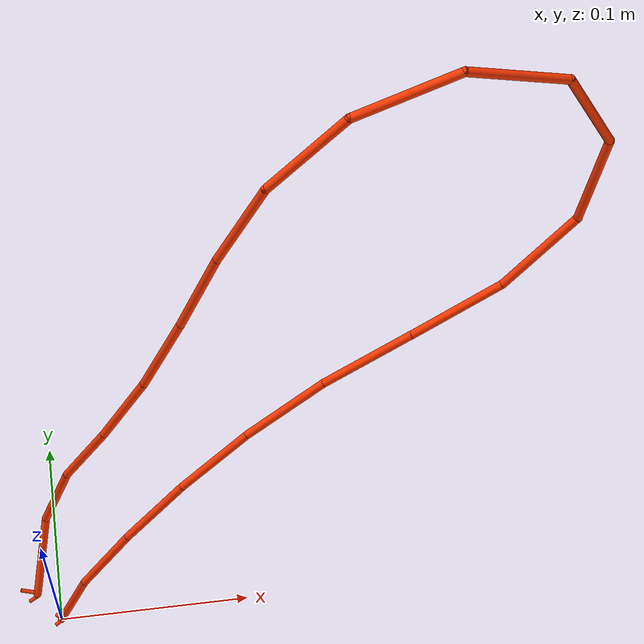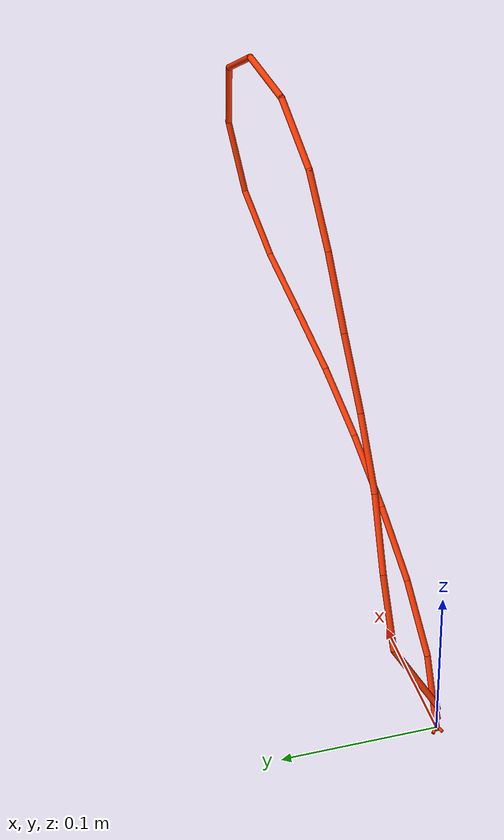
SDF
<?xml version="1.0" ?>
<sdf version="1.9">
  <model name="cable">
    <link name='cable_end_0'>
      <pose>0 0 0 0 0 0</pose>
      <inertial>
        <pose>0 0 0 0 0 0</pose>
        <mass>0</mass>
        <inertia>
          <ixx>0.001</ixx>
          <ixy>0</ixy>
          <ixz>0</ixz>
          <iyy>0.001</iyy>
          <iyz>0</iyz>
          <izz>0.001</izz>
        </inertia>
      </inertial>
      <collision name='base_collision'>
        <pose>0 0 0 0 0 0</pose>
        <geometry>
          <sphere>
            <radius>0.002</radius>
          </sphere>
        </geometry>
        <surface>
          <friction>
            <torsional>
              <coefficient>0.05</coefficient>
            </torsional>
            <bullet>
              <friction>0.05</friction>
              <friction2>0.05</friction2>
            </bullet>
          </friction>
        </surface>
      </collision>
      <visual name='base_vis'>
        <pose>0 0 0 0 0 0</pose>
        <geometry>
          <sphere>
            <radius>0.002</radius>
          </sphere>
        </geometry>
        <material>
          <diffuse>1 0.219999999 0 1</diffuse>
          <specular>0.5 0.5 0.5 1</specular>
          <pbr>
            <metal>
              <roughness>0.01</roughness>
              <metalness>0.01</metalness>
            </metal>
          </pbr>
        </material>
      </visual>
      <enable_wind>false</enable_wind>
    </link>
    <joint name='joint_end_0' type='ball'>
      <pose>-1.2196199999999999e-18 1.7036e-19 -0.024 0.024762999999999993 1.7999999999999909e-05 -0.061838999999999998</pose>
      <child>link_1</child>
      <parent>cable_end_0</parent>
      <axis>
        <xyz>1.7146062837236352e-16 -1.5504091066549018e-17 1</xyz>
        <limit>
          <lower>-inf</lower>
          <upper>inf</upper>
          <effort>inf</effort>
          <velocity>inf</velocity>
          <stiffness>100000000</stiffness>
          <dissipation>1</dissipation>
        </limit>
        <dynamics>
          <spring_reference>0</spring_reference>
          <spring_stiffness>0</spring_stiffness>
          <damping>0.20000000000000001</damping>
          <friction>0</friction>
        </dynamics>
      </axis>
    </joint>
    <link name='link_1'>
      <pose>0.008285270026755942 0.00090974360136397703 0.022503620592118634 0.030248501434986374 0.35347438069324083 0.1965656925848957</pose>
      <inertial>
        <pose>0 0 0 0 0 0</pose>
        <mass>0</mass>
        <inertia>
          <ixx>0.001</ixx>
          <ixy>0</ixy>
          <ixz>0</ixz>
          <iyy>0.001</iyy>
          <iyz>0</iyz>
          <izz>0.001</izz>
        </inertia>
      </inertial>
      <collision name='link_1_collision'>
        <pose>0 0 0.0060000000000000001 0 0 0</pose>
        <geometry>
          <capsule>
            <length>0.035999999999999997</length>
            <radius>0.002</radius>
          </capsule>
        </geometry>
        <surface>
          <friction>
            <torsional>
              <coefficient>0.050000000000000003</coefficient>
            </torsional>
            <bullet>
              <friction>0.050000000000000003</friction>
              <friction2>0.050000000000000003</friction2>
            </bullet>
          </friction>
        </surface>
      </collision>
      <visual name='link_1_vis'>
        <pose>0 0 0 0 0 0</pose>
        <geometry>
          <capsule>
            <length>0.048000000000000001</length>
            <radius>0.002</radius>
          </capsule>
        </geometry>
        <material>
          <diffuse>1 0.219999999 0 1</diffuse>
          <specular>0.5 0.5 0.5 1</specular>
          <pbr>
            <metal>
              <roughness>0.01</roughness>
              <metalness>0.01</metalness>
            </metal>
          </pbr>
        </material>
      </visual>
      <enable_wind>false</enable_wind>
    </link>
    <link name='link_2'>
      <pose>0.02939153165201347 0.0046136601655235032 0.065097538877921246 0.16626173834772792 0.55672948194858762 0.52205207666730291</pose>
      <inertial>
        <pose>0 0 0 0 0 0</pose>
        <mass>0</mass>
        <inertia>
          <ixx>0.001</ixx>
          <ixy>0</ixy>
          <ixz>0</ixz>
          <iyy>0.001</iyy>
          <iyz>0</iyz>
          <izz>0.001</izz>
        </inertia>
      </inertial>
      <collision name='link_2_collision'>
        <pose>0 0 0 0 0 0</pose>
        <geometry>
          <capsule>
            <length>0.048000000000000001</length>
            <radius>0.002</radius>
          </capsule>
        </geometry>
        <surface>
          <friction>
            <torsional>
              <coefficient>0.050000000000000003</coefficient>
            </torsional>
            <bullet>
              <friction>0.050000000000000003</friction>
              <friction2>0.050000000000000003</friction2>
            </bullet>
          </friction>
        </surface>
      </collision>
      <visual name='link_2_vis'>
        <pose>0 0 0 0 0 0</pose>
        <geometry>
          <capsule>
            <length>0.048000000000000001</length>
            <radius>0.002</radius>
          </capsule>
        </geometry>
        <material>
          <diffuse>1 0.219999999 0 1</diffuse>
          <specular>0.5 0.5 0.5 1</specular>
          <pbr>
            <metal>
              <roughness>0.01</roughness>
              <metalness>0.01</metalness>
            </metal>
          </pbr>
        </material>
      </visual>
      <enable_wind>false</enable_wind>
    </link>
    <link name='link_3'>
      <pose>0.057153364056589773 0.011170405104272418 0.10357949385143034 0.41880122695709227 0.57530736391681037 0.93249384066024532</pose>
      <inertial>
        <pose>0 0 0 0 0 0</pose>
        <mass>0</mass>
        <inertia>
          <ixx>0.001</ixx>
          <ixy>0</ixy>
          <ixz>0</ixz>
          <iyy>0.001</iyy>
          <iyz>0</iyz>
          <izz>0.001</izz>
        </inertia>
      </inertial>
      <collision name='link_3_collision'>
        <pose>0 0 0 0 0 0</pose>
        <geometry>
          <capsule>
            <length>0.048000000000000001</length>
            <radius>0.002</radius>
          </capsule>
        </geometry>
        <surface>
          <friction>
            <torsional>
              <coefficient>0.050000000000000003</coefficient>
            </torsional>
            <bullet>
              <friction>0.050000000000000003</friction>
              <friction2>0.050000000000000003</friction2>
            </bullet>
          </friction>
        </surface>
      </collision>
      <visual name='link_3_vis'>
        <pose>0 0 0 0 0 0</pose>
        <geometry>
          <capsule>
            <length>0.048000000000000001</length>
            <radius>0.002</radius>
          </capsule>
        </geometry>
        <material>
          <diffuse>1 0.219999999 0 1</diffuse>
          <specular>0.5 0.5 0.5 1</specular>
          <pbr>
            <metal>
              <roughness>0.01</roughness>
              <metalness>0.01</metalness>
            </metal>
          </pbr>
        </material>
      </visual>
      <enable_wind>false</enable_wind>
    </link>
    <link name='link_4'>
      <pose>0.088682073728616695 0.018895727692867126 0.13883689620313056 0.69551666984829164 0.41270548696486697 1.357330522349333</pose>
      <inertial>
        <pose>0 0 0 0 0 0</pose>
        <mass>0</mass>
        <inertia>
          <ixx>0.001</ixx>
          <ixy>0</ixy>
          <ixz>0</ixz>
          <iyy>0.001</iyy>
          <iyz>0</iyz>
          <izz>0.001</izz>
        </inertia>
      </inertial>
      <collision name='link_4_collision'>
        <pose>0 0 0 0 0 0</pose>
        <geometry>
          <capsule>
            <length>0.048000000000000001</length>
            <radius>0.002</radius>
          </capsule>
        </geometry>
        <surface>
          <friction>
            <torsional>
              <coefficient>0.050000000000000003</coefficient>
            </torsional>
            <bullet>
              <friction>0.050000000000000003</friction>
              <friction2>0.050000000000000003</friction2>
            </bullet>
          </friction>
        </surface>
      </collision>
      <visual name='link_4_vis'>
        <pose>0 0 0 0 0 0</pose>
        <geometry>
          <capsule>
            <length>0.048000000000000001</length>
            <radius>0.002</radius>
          </capsule>
        </geometry>
        <material>
          <diffuse>1 0.219999999 0 1</diffuse>
          <specular>0.5 0.5 0.5 1</specular>
          <pbr>
            <metal>
              <roughness>0.01</roughness>
              <metalness>0.01</metalness>
            </metal>
          </pbr>
        </material>
      </visual>
      <enable_wind>false</enable_wind>
    </link>
    <link name='link_5'>
      <pose>0.12376637580592709 0.0268874747987361 0.17040941000011572 0.90844140104159921 0.068528156329668355 1.7320902866495604</pose>
      <inertial>
        <pose>0 0 0 0 0 0</pose>
        <mass>0</mass>
        <inertia>
          <ixx>0.001</ixx>
          <ixy>0</ixy>
          <ixz>0</ixz>
          <iyy>0.001</iyy>
          <iyz>0</iyz>
          <izz>0.001</izz>
        </inertia>
      </inertial>
      <collision name='link_5_collision'>
        <pose>0 0 0 0 0 0</pose>
        <geometry>
          <capsule>
            <length>0.048000000000000001</length>
            <radius>0.002</radius>
          </capsule>
        </geometry>
        <surface>
          <friction>
            <torsional>
              <coefficient>0.050000000000000003</coefficient>
            </torsional>
            <bullet>
              <friction>0.050000000000000003</friction>
              <friction2>0.050000000000000003</friction2>
            </bullet>
          </friction>
        </surface>
      </collision>
      <visual name='link_5_vis'>
        <pose>0 0 0 0 0 0</pose>
        <geometry>
          <capsule>
            <length>0.048000000000000001</length>
            <radius>0.002</radius>
          </capsule>
        </geometry>
        <material>
          <diffuse>1 0.219999999 0 1</diffuse>
          <specular>0.5 0.5 0.5 1</specular>
          <pbr>
            <metal>
              <roughness>0.01</roughness>
              <metalness>0.01</metalness>
            </metal>
          </pbr>
        </material>
      </visual>
      <enable_wind>false</enable_wind>
    </link>
    <link name='link_6'>
      <pose>0.16267066677155051 0.034711321421656727 0.19703317873456117 0.9810885291290079 -0.45930277985347973 2.0435337976852814</pose>
      <inertial>
        <pose>0 0 0 0 0 0</pose>
        <mass>0</mass>
        <inertia>
          <ixx>0.001</ixx>
          <ixy>0</ixy>
          <ixz>0</ixz>
          <iyy>0.001</iyy>
          <iyz>0</iyz>
          <izz>0.001</izz>
        </inertia>
      </inertial>
      <collision name='link_6_collision'>
        <pose>0 0 0 0 0 0</pose>
        <geometry>
          <capsule>
            <length>0.048000000000000001</length>
            <radius>0.002</radius>
          </capsule>
        </geometry>
        <surface>
          <friction>
            <torsional>
              <coefficient>0.050000000000000003</coefficient>
            </torsional>
            <bullet>
              <friction>0.050000000000000003</friction>
              <friction2>0.050000000000000003</friction2>
            </bullet>
          </friction>
        </surface>
      </collision>
      <visual name='link_6_vis'>
        <pose>0 0 0 0 0 0</pose>
        <geometry>
          <capsule>
            <length>0.048000000000000001</length>
            <radius>0.002</radius>
          </capsule>
        </geometry>
        <material>
          <diffuse>1 0.219999999 0 1</diffuse>
          <specular>0.5 0.5 0.5 1</specular>
          <pbr>
            <metal>
              <roughness>0.01</roughness>
              <metalness>0.01</metalness>
            </metal>
          </pbr>
        </material>
      </visual>
      <enable_wind>false</enable_wind>
    </link>
    <link name='link_7'>
      <pose>0.20337583372476709 0.042444463772830926 0.22085857069715703 0.56285688430793523 -0.93871818398439266 2.6705906514245008</pose>
      <inertial>
        <pose>0 0 0 0 0 0</pose>
        <mass>0</mass>
        <inertia>
          <ixx>0.001</ixx>
          <ixy>0</ixy>
          <ixz>0</ixz>
          <iyy>0.001</iyy>
          <iyz>0</iyz>
          <izz>0.001</izz>
        </inertia>
      </inertial>
      <collision name='link_7_collision'>
        <pose>0 0 0 0 0 0</pose>
        <geometry>
          <capsule>
            <length>0.048000000000000001</length>
            <radius>0.002</radius>
          </capsule>
        </geometry>
        <surface>
          <friction>
            <torsional>
              <coefficient>0.050000000000000003</coefficient>
            </torsional>
            <bullet>
              <friction>0.050000000000000003</friction>
              <friction2>0.050000000000000003</friction2>
            </bullet>
          </friction>
        </surface>
      </collision>
      <visual name='link_7_vis'>
        <pose>0 0 0 0 0 0</pose>
        <geometry>
          <capsule>
            <length>0.048000000000000001</length>
            <radius>0.002</radius>
          </capsule>
        </geometry>
        <material>
          <diffuse>1 0.219999999 0 1</diffuse>
          <specular>0.5 0.5 0.5 1</specular>
          <pbr>
            <metal>
              <roughness>0.01</roughness>
              <metalness>0.01</metalness>
            </metal>
          </pbr>
        </material>
      </visual>
      <enable_wind>false</enable_wind>
    </link>
    <link name='link_8'>
      <pose>0.2391505570920418 0.050955764702356354 0.25027272603107581 -0.14299910833305185 -0.73388919942900077 -2.6419102283279545</pose>
      <inertial>
        <pose>0 0 0 0 0 0</pose>
        <mass>0</mass>
        <inertia>
          <ixx>0.001</ixx>
          <ixy>0</ixy>
          <ixz>0</ixz>
          <iyy>0.001</iyy>
          <iyz>0</iyz>
          <izz>0.001</izz>
        </inertia>
      </inertial>
      <collision name='link_8_collision'>
        <pose>0 0 0 0 0 0</pose>
        <geometry>
          <capsule>
            <length>0.048000000000000001</length>
            <radius>0.002</radius>
          </capsule>
        </geometry>
        <surface>
          <friction>
            <torsional>
              <coefficient>0.050000000000000003</coefficient>
            </torsional>
            <bullet>
              <friction>0.050000000000000003</friction>
              <friction2>0.050000000000000003</friction2>
            </bullet>
          </friction>
        </surface>
      </collision>
      <visual name='link_8_vis'>
        <pose>0 0 0 0 0 0</pose>
        <geometry>
          <capsule>
            <length>0.048000000000000001</length>
            <radius>0.002</radius>
          </capsule>
        </geometry>
        <material>
          <diffuse>1 0.219999999 0 1</diffuse>
          <specular>0.5 0.5 0.5 1</specular>
          <pbr>
            <metal>
              <roughness>0.01</roughness>
              <metalness>0.01</metalness>
            </metal>
          </pbr>
        </material>
      </visual>
      <enable_wind>false</enable_wind>
    </link>
    <link name='link_9'>
      <pose>0.258946865599464 0.059422163011106255 0.29091205419886285 -0.041231458002225448 -0.24352775279681368 -2.2395016234709875</pose>
      <inertial>
        <pose>0 0 0 0 0 0</pose>
        <mass>0</mass>
        <inertia>
          <ixx>0.001</ixx>
          <ixy>0</ixy>
          <ixz>0</ixz>
          <iyy>0.001</iyy>
          <iyz>0</iyz>
          <izz>0.001</izz>
        </inertia>
      </inertial>
      <collision name='link_9_collision'>
        <pose>0 0 0 0 0 0</pose>
        <geometry>
          <capsule>
            <length>0.048000000000000001</length>
            <radius>0.002</radius>
          </capsule>
        </geometry>
        <surface>
          <friction>
            <torsional>
              <coefficient>0.050000000000000003</coefficient>
            </torsional>
            <bullet>
              <friction>0.050000000000000003</friction>
              <friction2>0.050000000000000003</friction2>
            </bullet>
          </friction>
        </surface>
      </collision>
      <visual name='link_9_vis'>
        <pose>0 0 0 0 0 0</pose>
        <geometry>
          <capsule>
            <length>0.048000000000000001</length>
            <radius>0.002</radius>
          </capsule>
        </geometry>
        <material>
          <diffuse>1 0.219999999 0 1</diffuse>
          <specular>0.5 0.5 0.5 1</specular>
          <pbr>
            <metal>
              <roughness>0.01</roughness>
              <metalness>0.01</metalness>
            </metal>
          </pbr>
        </material>
      </visual>
      <enable_wind>false</enable_wind>
    </link>
    <link name='link_10'>
      <pose>0.25242815879395297 0.064725654869659588 0.33529862724789683 0.46436385581535794 0.1005083466642729 -1.8983941769762329</pose>
      <inertial>
        <pose>0 0 0 0 0 0</pose>
        <mass>0</mass>
        <inertia>
          <ixx>0.001</ixx>
          <ixy>0</ixy>
          <ixz>0</ixz>
          <iyy>0.001</iyy>
          <iyz>0</iyz>
          <izz>0.001</izz>
        </inertia>
      </inertial>
      <collision name='link_10_collision'>
        <pose>0 0 0 0 0 0</pose>
        <geometry>
          <capsule>
            <length>0.048000000000000001</length>
            <radius>0.002</radius>
          </capsule>
        </geometry>
        <surface>
          <friction>
            <torsional>
              <coefficient>0.050000000000000003</coefficient>
            </torsional>
            <bullet>
              <friction>0.050000000000000003</friction>
              <friction2>0.050000000000000003</friction2>
            </bullet>
          </friction>
        </surface>
      </collision>
      <visual name='link_10_vis'>
        <pose>0 0 0 0 0 0</pose>
        <geometry>
          <capsule>
            <length>0.048000000000000001</length>
            <radius>0.002</radius>
          </capsule>
        </geometry>
        <material>
          <diffuse>1 0.219999999 0 1</diffuse>
          <specular>0.5 0.5 0.5 1</specular>
          <pbr>
            <metal>
              <roughness>0.01</roughness>
              <metalness>0.01</metalness>
            </metal>
          </pbr>
        </material>
      </visual>
      <enable_wind>false</enable_wind>
    </link>
    <link name='link_11'>
      <pose>0.21949373442461328 0.064158915944090511 0.36545801957052509 1.1835219627224609 0.14940654804363199 -1.5424594835078329</pose>
      <inertial>
        <pose>0 0 0 0 0 0</pose>
        <mass>0</mass>
        <inertia>
          <ixx>0.001</ixx>
          <ixy>0</ixy>
          <ixz>0</ixz>
          <iyy>0.001</iyy>
          <iyz>0</iyz>
          <izz>0.001</izz>
        </inertia>
      </inertial>
      <collision name='link_11_collision'>
        <pose>0 0 0 0 0 0</pose>
        <geometry>
          <capsule>
            <length>0.048000000000000001</length>
            <radius>0.002</radius>
          </capsule>
        </geometry>
        <surface>
          <friction>
            <torsional>
              <coefficient>0.050000000000000003</coefficient>
            </torsional>
            <bullet>
              <friction>0.050000000000000003</friction>
              <friction2>0.050000000000000003</friction2>
            </bullet>
          </friction>
        </surface>
      </collision>
      <visual name='link_11_vis'>
        <pose>0 0 0 0 0 0</pose>
        <geometry>
          <capsule>
            <length>0.048000000000000001</length>
            <radius>0.002</radius>
          </capsule>
        </geometry>
        <material>
          <diffuse>1 0.219999999 0 1</diffuse>
          <specular>0.5 0.5 0.5 1</specular>
          <pbr>
            <metal>
              <roughness>0.01</roughness>
              <metalness>0.01</metalness>
            </metal>
          </pbr>
        </material>
      </visual>
      <enable_wind>false</enable_wind>
    </link>
    <link name='link_12'>
      <pose>0.1746776880138905 0.058360978683564574 0.36815964753951447 1.8331977873262935 -0.045555528418002339 -1.4163889481482461</pose>
      <inertial>
        <pose>0 0 0 0 0 0</pose>
        <mass>0</mass>
        <inertia>
          <ixx>0.001</ixx>
          <ixy>0</ixy>
          <ixz>0</ixz>
          <iyy>0.001</iyy>
          <iyz>0</iyz>
          <izz>0.001</izz>
        </inertia>
      </inertial>
      <collision name='link_12_collision'>
        <pose>0 0 0 0 0 0</pose>
        <geometry>
          <capsule>
            <length>0.048000000000000001</length>
            <radius>0.002</radius>
          </capsule>
        </geometry>
        <surface>
          <friction>
            <torsional>
              <coefficient>0.050000000000000003</coefficient>
            </torsional>
            <bullet>
              <friction>0.050000000000000003</friction>
              <friction2>0.050000000000000003</friction2>
            </bullet>
          </friction>
        </surface>
      </collision>
      <visual name='link_12_vis'>
        <pose>0 0 0 0 0 0</pose>
        <geometry>
          <capsule>
            <length>0.048000000000000001</length>
            <radius>0.002</radius>
          </capsule>
        </geometry>
        <material>
          <diffuse>1 0.219999999 0 1</diffuse>
          <specular>0.5 0.5 0.5 1</specular>
          <pbr>
            <metal>
              <roughness>0.01</roughness>
              <metalness>0.01</metalness>
            </metal>
          </pbr>
        </material>
      </visual>
      <enable_wind>false</enable_wind>
    </link>
    <link name='link_13'>
      <pose>0.13518385327761617 0.05098258671922129 0.34548714507953338 2.3636164079212465 -0.23520695888109253 -1.5934110154231889</pose>
      <inertial>
        <pose>0 0 0 0 0 0</pose>
        <mass>0</mass>
        <inertia>
          <ixx>0.001</ixx>
          <ixy>0</ixy>
          <ixz>0</ixz>
          <iyy>0.001</iyy>
          <iyz>0</iyz>
          <izz>0.001</izz>
        </inertia>
      </inertial>
      <collision name='link_13_collision'>
        <pose>0 0 0 0 0 0</pose>
        <geometry>
          <capsule>
            <length>0.048000000000000001</length>
            <radius>0.002</radius>
          </capsule>
        </geometry>
        <surface>
          <friction>
            <torsional>
              <coefficient>0.050000000000000003</coefficient>
            </torsional>
            <bullet>
              <friction>0.050000000000000003</friction>
              <friction2>0.050000000000000003</friction2>
            </bullet>
          </friction>
        </surface>
      </collision>
      <visual name='link_13_vis'>
        <pose>0 0 0 0 0 0</pose>
        <geometry>
          <capsule>
            <length>0.048000000000000001</length>
            <radius>0.002</radius>
          </capsule>
        </geometry>
        <material>
          <diffuse>1 0.219999999 0 1</diffuse>
          <specular>0.5 0.5 0.5 1</specular>
          <pbr>
            <metal>
              <roughness>0.01</roughness>
              <metalness>0.01</metalness>
            </metal>
          </pbr>
        </material>
      </visual>
      <enable_wind>false</enable_wind>
    </link>
    <link name='link_14'>
      <pose>0.10767364568704174 0.044893512611374142 0.30792536312839158 2.7583555761863887 -0.29768833227172697 -1.9666977603461049</pose>
      <inertial>
        <pose>0 0 0 0 0 0</pose>
        <mass>0</mass>
        <inertia>
          <ixx>0.001</ixx>
          <ixy>0</ixy>
          <ixz>0</ixz>
          <iyy>0.001</iyy>
          <iyz>0</iyz>
          <izz>0.001</izz>
        </inertia>
      </inertial>
      <collision name='link_14_collision'>
        <pose>0 0 0 0 0 0</pose>
        <geometry>
          <capsule>
            <length>0.048000000000000001</length>
            <radius>0.002</radius>
          </capsule>
        </geometry>
        <surface>
          <friction>
            <torsional>
              <coefficient>0.050000000000000003</coefficient>
            </torsional>
            <bullet>
              <friction>0.050000000000000003</friction>
              <friction2>0.050000000000000003</friction2>
            </bullet>
          </friction>
        </surface>
      </collision>
      <visual name='link_14_vis'>
        <pose>0 0 0 0 0 0</pose>
        <geometry>
          <capsule>
            <length>0.048000000000000001</length>
            <radius>0.002</radius>
          </capsule>
        </geometry>
        <material>
          <diffuse>1 0.219999999 0 1</diffuse>
          <specular>0.5 0.5 0.5 1</specular>
          <pbr>
            <metal>
              <roughness>0.01</roughness>
              <metalness>0.01</metalness>
            </metal>
          </pbr>
        </material>
      </visual>
      <enable_wind>false</enable_wind>
    </link>
    <link name='link_15'>
      <pose>0.088100153942727744 0.040139659863253685 0.26473577996811926 2.9499767866679454 -0.34329886545270721 -2.3724179827680278</pose>
      <inertial>
        <pose>0 0 0 0 0 0</pose>
        <mass>0</mass>
        <inertia>
          <ixx>0.001</ixx>
          <ixy>0</ixy>
          <ixz>0</ixz>
          <iyy>0.001</iyy>
          <iyz>0</iyz>
          <izz>0.001</izz>
        </inertia>
      </inertial>
      <collision name='link_15_collision'>
        <pose>0 0 0 0 0 0</pose>
        <geometry>
          <capsule>
            <length>0.048000000000000001</length>
            <radius>0.002</radius>
          </capsule>
        </geometry>
        <surface>
          <friction>
            <torsional>
              <coefficient>0.050000000000000003</coefficient>
            </torsional>
            <bullet>
              <friction>0.050000000000000003</friction>
              <friction2>0.050000000000000003</friction2>
            </bullet>
          </friction>
        </surface>
      </collision>
      <visual name='link_15_vis'>
        <pose>0 0 0 0 0 0</pose>
        <geometry>
          <capsule>
            <length>0.048000000000000001</length>
            <radius>0.002</radius>
          </capsule>
        </geometry>
        <material>
          <diffuse>1 0.219999999 0 1</diffuse>
          <specular>0.5 0.5 0.5 1</specular>
          <pbr>
            <metal>
              <roughness>0.01</roughness>
              <metalness>0.01</metalness>
            </metal>
          </pbr>
        </material>
      </visual>
      <enable_wind>false</enable_wind>
    </link>
    <link name='link_16'>
      <pose>0.069618176194718551 0.035637894765127354 0.22081710287267142 3.0836992984935909 -0.42207976259121394 -2.7682781989019198</pose>
      <inertial>
        <pose>0 0 0 0 0 0</pose>
        <mass>0</mass>
        <inertia>
          <ixx>0.001</ixx>
          <ixy>0</ixy>
          <ixz>0</ixz>
          <iyy>0.001</iyy>
          <iyz>0</iyz>
          <izz>0.001</izz>
        </inertia>
      </inertial>
      <collision name='link_16_collision'>
        <pose>0 0 0 0 0 0</pose>
        <geometry>
          <capsule>
            <length>0.048000000000000001</length>
            <radius>0.002</radius>
          </capsule>
        </geometry>
        <surface>
          <friction>
            <torsional>
              <coefficient>0.050000000000000003</coefficient>
            </torsional>
            <bullet>
              <friction>0.050000000000000003</friction>
              <friction2>0.050000000000000003</friction2>
            </bullet>
          </friction>
        </surface>
      </collision>
      <visual name='link_16_vis'>
        <pose>0 0 0 0 0 0</pose>
        <geometry>
          <capsule>
            <length>0.048000000000000001</length>
            <radius>0.002</radius>
          </capsule>
        </geometry>
        <material>
          <diffuse>1 0.219999999 0 1</diffuse>
          <specular>0.5 0.5 0.5 1</specular>
          <pbr>
            <metal>
              <roughness>0.01</roughness>
              <metalness>0.01</metalness>
            </metal>
          </pbr>
        </material>
      </visual>
      <enable_wind>false</enable_wind>
    </link>
    <link name='link_17'>
      <pose>0.049051170208135542 0.03216067369543224 0.17768265122227533 -3.0749371220791328 -0.47214753750112626 3.1048195047930198</pose>
      <inertial>
        <pose>0 0 0 0 0 0</pose>
        <mass>0</mass>
        <inertia>
          <ixx>0.001</ixx>
          <ixy>0</ixy>
          <ixz>0</ixz>
          <iyy>0.001</iyy>
          <iyz>0</iyz>
          <izz>0.001</izz>
        </inertia>
      </inertial>
      <collision name='link_17_collision'>
        <pose>0 0 0 0 0 0</pose>
        <geometry>
          <capsule>
            <length>0.048000000000000001</length>
            <radius>0.002</radius>
          </capsule>
        </geometry>
        <surface>
          <friction>
            <torsional>
              <coefficient>0.050000000000000003</coefficient>
            </torsional>
            <bullet>
              <friction>0.050000000000000003</friction>
              <friction2>0.050000000000000003</friction2>
            </bullet>
          </friction>
        </surface>
      </collision>
      <visual name='link_17_vis'>
        <pose>0 0 0 0 0 0</pose>
        <geometry>
          <capsule>
            <length>0.048000000000000001</length>
            <radius>0.002</radius>
          </capsule>
        </geometry>
        <material>
          <diffuse>1 0.219999999 0 1</diffuse>
          <specular>0.5 0.5 0.5 1</specular>
          <pbr>
            <metal>
              <roughness>0.01</roughness>
              <metalness>0.01</metalness>
            </metal>
          </pbr>
        </material>
      </visual>
      <enable_wind>false</enable_wind>
    </link>
    <link name='link_18'>
      <pose>0.027267698046697486 0.031496603730987838 0.13497763009434482 -2.9646423180116086 -0.43747430537047161 2.693320428193136</pose>
      <inertial>
        <pose>0 0 0 0 0 0</pose>
        <mass>0</mass>
        <inertia>
          <ixx>0.001</ixx>
          <ixy>0</ixy>
          <ixz>0</ixz>
          <iyy>0.001</iyy>
          <iyz>0</iyz>
          <izz>0.001</izz>
        </inertia>
      </inertial>
      <collision name='link_18_collision'>
        <pose>0 0 0 0 0 0</pose>
        <geometry>
          <capsule>
            <length>0.048000000000000001</length>
            <radius>0.002</radius>
          </capsule>
        </geometry>
        <surface>
          <friction>
            <torsional>
              <coefficient>0.050000000000000003</coefficient>
            </torsional>
            <bullet>
              <friction>0.050000000000000003</friction>
              <friction2>0.050000000000000003</friction2>
            </bullet>
          </friction>
        </surface>
      </collision>
      <visual name='link_18_vis'>
        <pose>0 0 0 0 0 0</pose>
        <geometry>
          <capsule>
            <length>0.048000000000000001</length>
            <radius>0.002</radius>
          </capsule>
        </geometry>
        <material>
          <diffuse>1 0.219999999 0 1</diffuse>
          <specular>0.5 0.5 0.5 1</specular>
          <pbr>
            <metal>
              <roughness>0.01</roughness>
              <metalness>0.01</metalness>
            </metal>
          </pbr>
        </material>
      </visual>
      <enable_wind>false</enable_wind>
    </link>
    <link name='link_19'>
      <pose>0.0086512666422666751 0.030798617329264588 0.09091431780964021 -2.8690457938594367 -0.19551376017119262 2.3350638789498679</pose>
      <inertial>
        <pose>0 0 0 0 0 0</pose>
        <mass>0</mass>
        <inertia>
          <ixx>0.001</ixx>
          <ixy>0</ixy>
          <ixz>0</ixz>
          <iyy>0.001</iyy>
          <iyz>0</iyz>
          <izz>0.001</izz>
        </inertia>
      </inertial>
      <collision name='link_19_collision'>
        <pose>0 0 0 0 0 0</pose>
        <geometry>
          <capsule>
            <length>0.048000000000000001</length>
            <radius>0.002</radius>
          </capsule>
        </geometry>
        <surface>
          <friction>
            <torsional>
              <coefficient>0.050000000000000003</coefficient>
            </torsional>
            <bullet>
              <friction>0.050000000000000003</friction>
              <friction2>0.050000000000000003</friction2>
            </bullet>
          </friction>
        </surface>
      </collision>
      <visual name='link_19_vis'>
        <pose>0 0 0 0 0 0</pose>
        <geometry>
          <capsule>
            <length>0.048000000000000001</length>
            <radius>0.002</radius>
          </capsule>
        </geometry>
        <material>
          <diffuse>1 0.219999999 0 1</diffuse>
          <specular>0.5 0.5 0.5 1</specular>
          <pbr>
            <metal>
              <roughness>0.01</roughness>
              <metalness>0.01</metalness>
            </metal>
          </pbr>
        </material>
      </visual>
      <enable_wind>false</enable_wind>
    </link>
    <link name='link_20'>
      <pose>-0.0042805541340493747 0.017125918297191012 0.048384212813087579 -2.661390402397418 0.36779050952563447 2.1441655055173738</pose>
      <inertial>
        <pose>0 0 0 0 0 0</pose>
        <mass>0</mass>
        <inertia>
          <ixx>0.001</ixx>
          <ixy>0</ixy>
          <ixz>0</ixz>
          <iyy>0.001</iyy>
          <iyz>0</iyz>
          <izz>0.001</izz>
        </inertia>
      </inertial>
      <collision name='link_20_collision'>
        <pose>0 0 -0.006 0 0 0</pose>
        <geometry>
          <capsule>
            <length>0.036</length>
            <radius>0.002</radius>
          </capsule>
        </geometry>
        <surface>
          <friction>
            <torsional>
              <coefficient>0.050000000000000003</coefficient>
            </torsional>
            <bullet>
              <friction>0.050000000000000003</friction>
              <friction2>0.050000000000000003</friction2>
            </bullet>
          </friction>
        </surface>
      </collision>
      <visual name='link_20_vis'>
        <pose>0 0 0 0 0 0</pose>
        <geometry>
          <capsule>
            <length>0.048000000000000001</length>
            <radius>0.002</radius>
          </capsule>
        </geometry>
        <material>
          <diffuse>1 0.219999999 0 1</diffuse>
          <specular>0.5 0.5 0.5 1</specular>
          <pbr>
            <metal>
              <roughness>0.01</roughness>
              <metalness>0.01</metalness>
            </metal>
          </pbr>
        </material>
      </visual>
      <enable_wind>false</enable_wind>
    </link>
    <joint name='joint_1' type='ball'>
      <pose>-3.4694499999999997e-18 3.1441900000000001e-18 -0.024 0.057665000000000015 -0.0035260000000000005 -0.14366599999999999</pose>
      <parent>link_1</parent>
      <child>link_2</child>
      <axis>
        <xyz>-2.2174644932759779e-16 -6.9392327170861326e-17 1</xyz>
        <limit>
          <lower>-inf</lower>
          <upper>inf</upper>
          <effort>inf</effort>
          <velocity>inf</velocity>
          <stiffness>100000000</stiffness>
          <dissipation>1</dissipation>
        </limit>
        <dynamics>
          <spring_reference>0</spring_reference>
          <spring_stiffness>0</spring_stiffness>
          <damping>0.20000000000000001</damping>
          <friction>0</friction>
        </dynamics>
      </axis>
    </joint>
    <joint name='joint_2' type='ball'>
      <pose>-2.4286099999999999e-17 -3.4694499999999997e-18 -0.024 0.072919999999999971 -0.015119999999999996 -0.18287300000000001</pose>
      <parent>link_2</parent>
      <child>link_3</child>
      <axis>
        <xyz>1.1752751549742868e-16 6.2558465352413594e-17 1</xyz>
        <limit>
          <lower>-inf</lower>
          <upper>inf</upper>
          <effort>inf</effort>
          <velocity>inf</velocity>
          <stiffness>100000000</stiffness>
          <dissipation>1</dissipation>
        </limit>
        <dynamics>
          <spring_reference>0</spring_reference>
          <spring_stiffness>0</spring_stiffness>
          <damping>0.20000000000000001</damping>
          <friction>0</friction>
        </dynamics>
      </axis>
    </joint>
    <joint name='joint_3' type='ball'>
      <pose>-3.46945e-17 1.3877799999999999e-17 -0.024 0.09283799999999999 -0.037758000000000028 -0.23843600000000004</pose>
      <parent>link_3</parent>
      <child>link_4</child>
      <axis>
        <xyz>-1.3877787807814457e-17 1.1102230246251564e-16 1</xyz>
        <limit>
          <lower>-inf</lower>
          <upper>inf</upper>
          <effort>inf</effort>
          <velocity>inf</velocity>
          <stiffness>100000000</stiffness>
          <dissipation>1</dissipation>
        </limit>
        <dynamics>
          <spring_reference>0</spring_reference>
          <spring_stiffness>0</spring_stiffness>
          <damping>0.20000000000000001</damping>
          <friction>0</friction>
        </dynamics>
      </axis>
    </joint>
    <joint name='joint_4' type='ball'>
      <pose>3.46945e-17 -8.3266699999999998e-17 -0.024 0.11562100000000003 -0.082796999999999996 -0.31582500000000002</pose>
      <parent>link_4</parent>
      <child>link_5</child>
      <axis>
        <xyz>7.6327832942979488e-17 5.5511151231257815e-17 1</xyz>
        <limit>
          <lower>-inf</lower>
          <upper>inf</upper>
          <effort>inf</effort>
          <velocity>inf</velocity>
          <stiffness>100000000</stiffness>
          <dissipation>1</dissipation>
        </limit>
        <dynamics>
          <spring_reference>0</spring_reference>
          <spring_stiffness>0</spring_stiffness>
          <damping>0.20000000000000001</damping>
          <friction>0</friction>
        </dynamics>
      </axis>
    </joint>
    <joint name='joint_5' type='ball'>
      <pose>6.9388900000000004e-18 1.3877799999999999e-17 -0.024 0.12748000000000004 -0.17044200000000007 -0.41081300000000026</pose>
      <parent>link_5</parent>
      <child>link_6</child>
      <axis>
        <xyz>-2.081668171172163e-17 -1.3684555315672042e-48 1</xyz>
        <limit>
          <lower>-inf</lower>
          <upper>inf</upper>
          <effort>inf</effort>
          <velocity>inf</velocity>
          <stiffness>100000000</stiffness>
          <dissipation>1</dissipation>
        </limit>
        <dynamics>
          <spring_reference>0</spring_reference>
          <spring_stiffness>0</spring_stiffness>
          <damping>0.20000000000000001</damping>
          <friction>0</friction>
        </dynamics>
      </axis>
    </joint>
    <joint name='joint_6' type='ball'>
      <pose>1.3877799999999999e-17 -1.3877799999999999e-17 -0.024 0.077454999999999954 -0.3108280000000001 -0.47354099999999982</pose>
      <parent>link_6</parent>
      <child>link_7</child>
      <axis>
        <xyz>-5.8980598183211417e-17 1.3877787807814417e-17 1</xyz>
        <limit>
          <lower>-inf</lower>
          <upper>inf</upper>
          <effort>inf</effort>
          <velocity>inf</velocity>
          <stiffness>100000000</stiffness>
          <dissipation>1</dissipation>
        </limit>
        <dynamics>
          <spring_reference>0</spring_reference>
          <spring_stiffness>0</spring_stiffness>
          <damping>0.20000000000000001</damping>
          <friction>0</friction>
        </dynamics>
      </axis>
    </joint>
    <joint name='joint_7' type='ball'>
      <pose>-2.7755599999999997e-17 -1.3877799999999999e-17 -0.024 -0.099142999999999981 -0.40827100000000011 -0.39838499999999988</pose>
      <parent>link_7</parent>
      <child>link_8</child>
      <axis>
        <xyz>3.4087316302944254e-16 1.960237527853792e-16 1</xyz>
        <limit>
          <lower>-inf</lower>
          <upper>inf</upper>
          <effort>inf</effort>
          <velocity>inf</velocity>
          <stiffness>100000000</stiffness>
          <dissipation>1</dissipation>
        </limit>
        <dynamics>
          <spring_reference>0</spring_reference>
          <spring_stiffness>0</spring_stiffness>
          <damping>0.20000000000000001</damping>
          <friction>0</friction>
        </dynamics>
      </axis>
    </joint>
    <joint name='joint_8' type='ball'>
      <pose>-2.2204499999999999e-16 -2.7755599999999997e-17 -0.024 -0.25860899999999998 -0.32846800000000009 -0.24861</pose>
      <parent>link_8</parent>
      <child>link_9</child>
      <axis>
        <xyz>-2.1293730667615307e-16 1.5265566588595902e-16 1</xyz>
        <limit>
          <lower>-inf</lower>
          <upper>inf</upper>
          <effort>inf</effort>
          <velocity>inf</velocity>
          <stiffness>100000000</stiffness>
          <dissipation>1</dissipation>
        </limit>
        <dynamics>
          <spring_reference>0</spring_reference>
          <spring_stiffness>0</spring_stiffness>
          <damping>0.20000000000000001</damping>
          <friction>0</friction>
        </dynamics>
      </axis>
    </joint>
    <joint name='joint_9' type='ball'>
      <pose>-1.11022e-16 5.5511199999999995e-17 -0.024 -0.28042499999999998 -0.20139399999999993 -0.16083399999999995</pose>
      <parent>link_9</parent>
      <child>link_10</child>
      <axis>
        <xyz>-7.2858385991025886e-17 -1.3183898417423734e-16 1</xyz>
        <limit>
          <lower>-inf</lower>
          <upper>inf</upper>
          <effort>inf</effort>
          <velocity>inf</velocity>
          <stiffness>100000000</stiffness>
          <dissipation>1</dissipation>
        </limit>
        <dynamics>
          <spring_reference>0</spring_reference>
          <spring_stiffness>0</spring_stiffness>
          <damping>0.20000000000000001</damping>
          <friction>0</friction>
        </dynamics>
      </axis>
    </joint>
    <joint name='joint_10' type='ball'>
      <pose>-1.11022e-16 2.2204499999999999e-16 -0.024 -0.2767980000000001 -0.13009000000000007 -0.12658500000000003</pose>
      <parent>link_10</parent>
      <child>link_11</child>
      <axis>
        <xyz>-1.7347234759768123e-17 -2.7755575615628889e-17 1</xyz>
        <limit>
          <lower>-inf</lower>
          <upper>inf</upper>
          <effort>inf</effort>
          <velocity>inf</velocity>
          <stiffness>100000000</stiffness>
          <dissipation>1</dissipation>
        </limit>
        <dynamics>
          <spring_reference>0</spring_reference>
          <spring_stiffness>0</spring_stiffness>
          <damping>0.20000000000000001</damping>
          <friction>0</friction>
        </dynamics>
      </axis>
    </joint>
    <joint name='joint_11' type='ball'>
      <pose>-8.3266699999999998e-17 1.11022e-16 -0.024 -0.31800899999999988 -0.097124000000000016 -0.12714500000000001</pose>
      <parent>link_11</parent>
      <child>link_12</child>
      <axis>
        <xyz>-1.3877787807814457e-17 5.5511151231257827e-17 1</xyz>
        <limit>
          <lower>-inf</lower>
          <upper>inf</upper>
          <effort>inf</effort>
          <velocity>inf</velocity>
          <stiffness>100000000</stiffness>
          <dissipation>1</dissipation>
        </limit>
        <dynamics>
          <spring_reference>0</spring_reference>
          <spring_stiffness>0</spring_stiffness>
          <damping>0.20000000000000001</damping>
          <friction>0</friction>
        </dynamics>
      </axis>
    </joint>
    <joint name='joint_12' type='ball'>
      <pose>-1.2489999999999999e-16 5.5511199999999995e-17 -0.024 -0.41514299999999998 -0.064825000000000021 -0.15662800000000004</pose>
      <parent>link_12</parent>
      <child>link_13</child>
      <axis>
        <xyz>5.4123372450476381e-16 3.8163916471489584e-17 1</xyz>
        <limit>
          <lower>-inf</lower>
          <upper>inf</upper>
          <effort>inf</effort>
          <velocity>inf</velocity>
          <stiffness>100000000</stiffness>
          <dissipation>1</dissipation>
        </limit>
        <dynamics>
          <spring_reference>0</spring_reference>
          <spring_stiffness>0</spring_stiffness>
          <damping>0.20000000000000001</damping>
          <friction>0</friction>
        </dynamics>
      </axis>
    </joint>
    <joint name='joint_13' type='ball'>
      <pose>5.8980600000000002e-17 3.46945e-17 -0.024 -0.47514499999999982 0.00481899999999999 -0.19548199999999996</pose>
      <parent>link_13</parent>
      <child>link_14</child>
      <axis>
        <xyz>1.3823577699190157e-17 -5.5511151231257815e-17 1</xyz>
        <limit>
          <lower>-inf</lower>
          <upper>inf</upper>
          <effort>inf</effort>
          <velocity>inf</velocity>
          <stiffness>100000000</stiffness>
          <dissipation>1</dissipation>
        </limit>
        <dynamics>
          <spring_reference>0</spring_reference>
          <spring_stiffness>0</spring_stiffness>
          <damping>0.20000000000000001</damping>
          <friction>0</friction>
        </dynamics>
      </axis>
    </joint>
    <joint name='joint_14' type='ball'>
      <pose>-1.9082000000000001e-17 -4.1633400000000002e-17 -0.024 -0.37640199999999963 0.076180000000000053 -0.18553599999999995</pose>
      <parent>link_14</parent>
      <child>link_15</child>
      <axis>
        <xyz>-1.1102230246251564e-16 2.0816681711721694e-17 1</xyz>
        <limit>
          <lower>-inf</lower>
          <upper>inf</upper>
          <effort>inf</effort>
          <velocity>inf</velocity>
          <stiffness>100000000</stiffness>
          <dissipation>1</dissipation>
        </limit>
        <dynamics>
          <spring_reference>0</spring_reference>
          <spring_stiffness>0</spring_stiffness>
          <damping>0.20000000000000001</damping>
          <friction>0</friction>
        </dynamics>
      </axis>
    </joint>
    <joint name='joint_15' type='ball'>
      <pose>4.1633400000000002e-17 -8.6736199999999999e-17 -0.024 -0.23104200000000003 0.090075999999999989 -0.13426600000000005</pose>
      <parent>link_15</parent>
      <child>link_16</child>
      <axis>
        <xyz>1.7347234759768065e-17 -8.3266726846886728e-17 1</xyz>
        <limit>
          <lower>-inf</lower>
          <upper>inf</upper>
          <effort>inf</effort>
          <velocity>inf</velocity>
          <stiffness>100000000</stiffness>
          <dissipation>1</dissipation>
        </limit>
        <dynamics>
          <spring_reference>0</spring_reference>
          <spring_stiffness>0</spring_stiffness>
          <damping>0.20000000000000001</damping>
          <friction>0</friction>
        </dynamics>
      </axis>
    </joint>
    <joint name='joint_16' type='ball'>
      <pose>2.0816700000000001e-17 -6.2449999999999997e-17 -0.024 -0.13905600000000001 0.075479000000000004 -0.092463999999999991</pose>
      <parent>link_16</parent>
      <child>link_17</child>
      <axis>
        <xyz>1.5612511283791252e-17 -2.0816681711721679e-17 1</xyz>
        <limit>
          <lower>-inf</lower>
          <upper>inf</upper>
          <effort>inf</effort>
          <velocity>inf</velocity>
          <stiffness>100000000</stiffness>
          <dissipation>1</dissipation>
        </limit>
        <dynamics>
          <spring_reference>0</spring_reference>
          <spring_stiffness>0</spring_stiffness>
          <damping>0.20000000000000001</damping>
          <friction>0</friction>
        </dynamics>
      </axis>
    </joint>
    <joint name='joint_17' type='ball'>
      <pose>-4.1633400000000002e-17 1.04083e-17 -0.024 -0.089686000000000002 0.059461 -0.066655000000000006</pose>
      <parent>link_17</parent>
      <child>link_18</child>
      <axis>
        <xyz>2.1337098754514722e-16 -1.3877787807814466e-17 1</xyz>
        <limit>
          <lower>-inf</lower>
          <upper>inf</upper>
          <effort>inf</effort>
          <velocity>inf</velocity>
          <stiffness>100000000</stiffness>
          <dissipation>1</dissipation>
        </limit>
        <dynamics>
          <spring_reference>0</spring_reference>
          <spring_stiffness>0</spring_stiffness>
          <damping>0.20000000000000001</damping>
          <friction>0</friction>
        </dynamics>
      </axis>
    </joint>
    <joint name='joint_18' type='ball'>
      <pose>3.4694499999999997e-18 -2.60209e-17 -0.024 -0.062118000000000013 0.047213000000000012 -0.050650000000000014</pose>
      <parent>link_18</parent>
      <child>link_19</child>
      <axis>
        <xyz>4.3021142204224816e-16 9.6277152916712769e-17 1</xyz>
        <limit>
          <lower>-inf</lower>
          <upper>inf</upper>
          <effort>inf</effort>
          <velocity>inf</velocity>
          <stiffness>100000000</stiffness>
          <dissipation>1</dissipation>
        </limit>
        <dynamics>
          <spring_reference>0</spring_reference>
          <spring_stiffness>0</spring_stiffness>
          <damping>0.20000000000000001</damping>
          <friction>0</friction>
        </dynamics>
      </axis>
    </joint>
    <joint name='joint_19' type='ball'>
      <pose>-1.73472e-17 -1.04083e-17 -0.024 -0.045549999999999986 0.038313000000000014 -0.040162000000000003</pose>
      <parent>link_19</parent>
      <child>link_20</child>
      <axis>
        <xyz>1.8735013540549514e-16 2.7755575615628914e-16 1</xyz>
        <limit>
          <lower>-inf</lower>
          <upper>inf</upper>
          <effort>inf</effort>
          <velocity>inf</velocity>
          <stiffness>100000000</stiffness>
          <dissipation>1</dissipation>
        </limit>
        <dynamics>
          <spring_reference>0</spring_reference>
          <spring_stiffness>0</spring_stiffness>
          <damping>0.20000000000000001</damping>
          <friction>0</friction>
        </dynamics>
      </axis>
    </joint>
    <link name='cable_connection_0'>
      <inertial>
        <pose>0 0 0 0 0 0</pose>
        <mass>0.01</mass>
        <inertia>
          <ixx>0.001</ixx>
          <ixy>0</ixy>
          <ixz>0</ixz>
          <iyy>0.001</iyy>
          <iyz>0</iyz>
          <izz>0.001</izz>
        </inertia>
      </inertial>
      <pose>-1.3486563843478905e-07 -1.9101259907117196e-08 1.2155173811922992e-07 -0.12253571847844784 -0.31528794334473198 -0.080197017132016282</pose>
      <collision name='collision_0'>
        <pose>-0.0018027756377319948 0.002 0 0.5880026035475675 1.57079 0</pose>
        <geometry>
          <cylinder>
            <radius>0.001</radius>
            <length>0.0036055512754639895</length>
          </cylinder>
        </geometry>
        <surface>
          <friction>
            <torsional>
              <coefficient>0.05</coefficient>
            </torsional>
            <bullet>
              <friction>0.05</friction>
              <friction2>0.05</friction2>
            </bullet>
          </friction>
        </surface>
      </collision>
      <visual name='visual_0'>
        <pose>-0.0018027756377319948 0.002 0 0.5880026035658189 1.5707900001331654 8.7741370751731541e-12</pose>
        <geometry>
          <cylinder>
            <radius>0.001</radius>
            <length>0.0036055512754639895</length>
          </cylinder>
        </geometry>
        <material>
          <diffuse>1 0.219999999 0 1</diffuse>
          <specular>0.5 0.5 0.5 1</specular>
          <pbr>
            <metal>
              <roughness>0.01</roughness>
              <metalness>0.01</metalness>
            </metal>
          </pbr>
        </material>
      </visual>
      <collision name='collision_1'>
        <pose>-0.0018027756377319948 -0.002 0 -0.5880026035475675 1.57079 0</pose>
        <geometry>
          <cylinder>
            <radius>0.001</radius>
            <length>0.0036055512754639895</length>
          </cylinder>
        </geometry>
        <surface>
          <friction>
            <torsional>
              <coefficient>0.05</coefficient>
            </torsional>
            <bullet>
              <friction>0.05</friction>
              <friction2>0.05</friction2>
            </bullet>
          </friction>
        </surface>
      </collision>
      <visual name='visual_1'>
        <pose>-0.0018027756377319948 -0.002 0 -0.5880026035658189 1.5707900001331654 -8.7741370751731541e-12</pose>
        <geometry>
          <cylinder>
            <radius>0.001</radius>
            <length>0.0036055512754639895</length>
          </cylinder>
        </geometry>
        <material>
          <diffuse>1 0.219999999 0 1</diffuse>
          <specular>0.5 0.5 0.5 1</specular>
          <pbr>
            <metal>
              <roughness>0.01</roughness>
              <metalness>0.01</metalness>
            </metal>
          </pbr>
        </material>
      </visual>
      <enable_wind>false</enable_wind>
    </link>
    <link name='cable_connection_1'>
      <inertial>
        <pose>0 0 0 0 0 0</pose>
        <mass>0.01</mass>
        <inertia>
          <ixx>0.001</ixx>
          <ixy>0</ixy>
          <ixz>0</ixz>
          <iyy>0.001</iyy>
          <iyz>0</iyz>
          <izz>0.001</izz>
        </inertia>
      </inertial>
      <pose>-0.0094421441225924774 0.0046834817511228199 0.028524408804356693 -1.4491367519334295 0.29246638457905783 3.0584575712681583</pose>
      <collision name='collision_0'>
        <pose>0.0036763602924631857 -0.0042500000000000003 0 0.61629693740938429 1.570790000168262 2.6322484238358005e-11</pose>
        <geometry>
          <cylinder>
            <radius>0.001</radius>
            <length>0.0073527205849263713</length>
          </cylinder>
        </geometry>
        <surface>
          <friction>
            <torsional>
              <coefficient>0.050000000000000003</coefficient>
            </torsional>
            <bullet>
              <friction>0.050000000000000003</friction>
              <friction2>0.050000000000000003</friction2>
            </bullet>
          </friction>
        </surface>
      </collision>
      <visual name='visual_0'>
        <pose>0.0036763602924631857 -0.0042500000000000003 0 0.61629693740938429 1.570790000168262 2.6322484238358005e-11</pose>
        <geometry>
          <cylinder>
            <radius>0.001</radius>
            <length>0.0073527205849263713</length>
          </cylinder>
        </geometry>
        <material>
          <diffuse>1 0.219999999 0 1</diffuse>
          <specular>0.5 0.5 0.5 1</specular>
          <pbr>
            <metal>
              <roughness>0.01</roughness>
              <metalness>0.01</metalness>
            </metal>
          </pbr>
        </material>
      </visual>
      <collision name='collision_1'>
        <pose>0.0036763602924631857 0.0042500000000000003 0 -0.61629693740938429 1.570790000168262 -2.6322484238358005e-11</pose>
        <geometry>
          <cylinder>
            <radius>0.001</radius>
            <length>0.0073527205849263713</length>
          </cylinder>
        </geometry>
        <surface>
          <friction>
            <torsional>
              <coefficient>0.050000000000000003</coefficient>
            </torsional>
            <bullet>
              <friction>0.050000000000000003</friction>
              <friction2>0.050000000000000003</friction2>
            </bullet>
          </friction>
        </surface>
      </collision>
      <visual name='visual_1'>
        <pose>0.0036763602924631857 0.0042500000000000003 0 -0.61629693740938429 1.570790000168262 -2.6322484238358005e-11</pose>
        <geometry>
          <cylinder>
            <radius>0.001</radius>
            <length>0.0073527205849263713</length>
          </cylinder>
        </geometry>
        <material>
          <diffuse>1 0.219999999 0 1</diffuse>
          <specular>0.5 0.5 0.5 1</specular>
          <pbr>
            <metal>
              <roughness>0.01</roughness>
              <metalness>0.01</metalness>
            </metal>
          </pbr>
        </material>
      </visual>
      <enable_wind>false</enable_wind>
    </link>
    <joint name='joint_connection_end_0' type='ball'>
      <pose>5.2939599999999994e-23 1.65436e-24 -6.6174400000000005e-23 0 1.6479900000000001e-17 0</pose>
      <parent>cable_end_0</parent>
      <child>cable_connection_0</child>
      <axis>
        <xyz>1.6274614964084939e-16 -2.0816681711721685e-17 1</xyz>
        <limit>
          <lower>-inf</lower>
          <upper>inf</upper>
          <effort>inf</effort>
          <velocity>inf</velocity>
          <stiffness>100000000</stiffness>
          <dissipation>1</dissipation>
        </limit>
        <dynamics>
          <spring_reference>0</spring_reference>
          <spring_stiffness>0</spring_stiffness>
          <damping>0.20000000000000001</damping>
          <friction>0</friction>
        </dynamics>
      </axis>
    </joint>
    <joint name='joint_connection_end_1' type='ball'>
      <pose>7.3725699999999996e-18 -3.1224999999999998e-17 -1.3877799999999999e-17 -0.026259000000000015 0.023921000000000012 0.76093299999999986</pose>
      <parent>link_20</parent>
      <child>cable_connection_1</child>
      <axis>
        <xyz>-1.3877787807814475e-17 5.2909066017292592e-17 1</xyz>
        <limit>
          <lower>-inf</lower>
          <upper>inf</upper>
          <effort>inf</effort>
          <velocity>inf</velocity>
          <stiffness>100000000</stiffness>
          <dissipation>1</dissipation>
        </limit>
        <dynamics>
          <spring_reference>0</spring_reference>
          <spring_stiffness>0</spring_stiffness>
          <damping>0.20000000000000001</damping>
          <friction>0</friction>
        </dynamics>
      </axis>
    </joint>
  </model>
</sdf>
